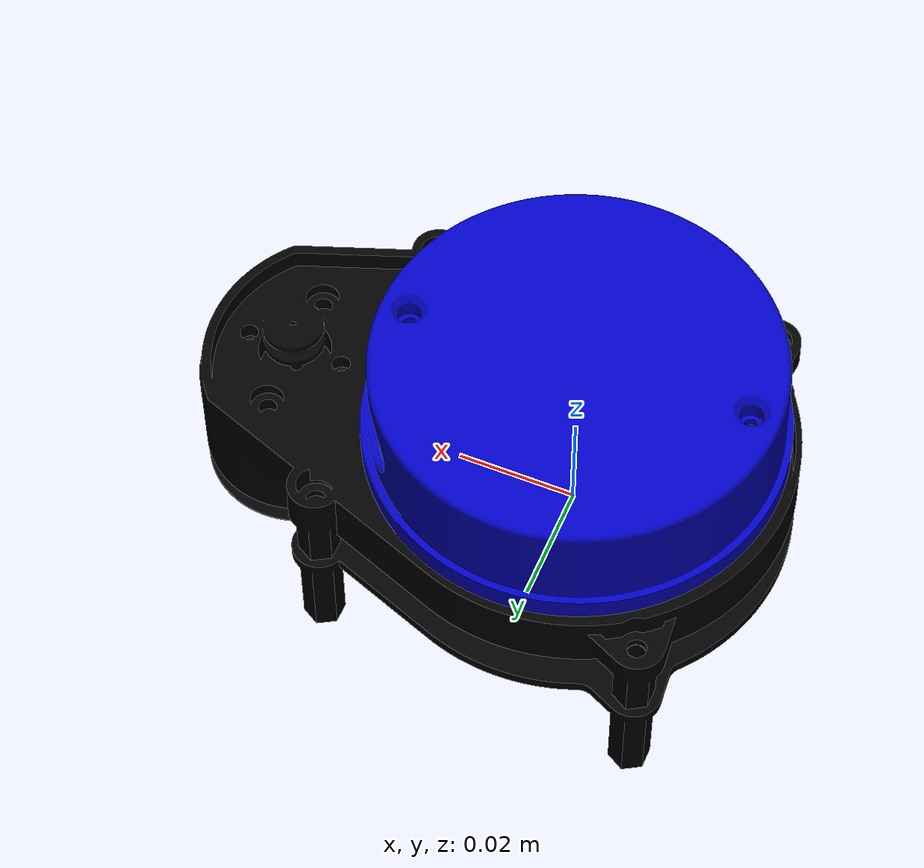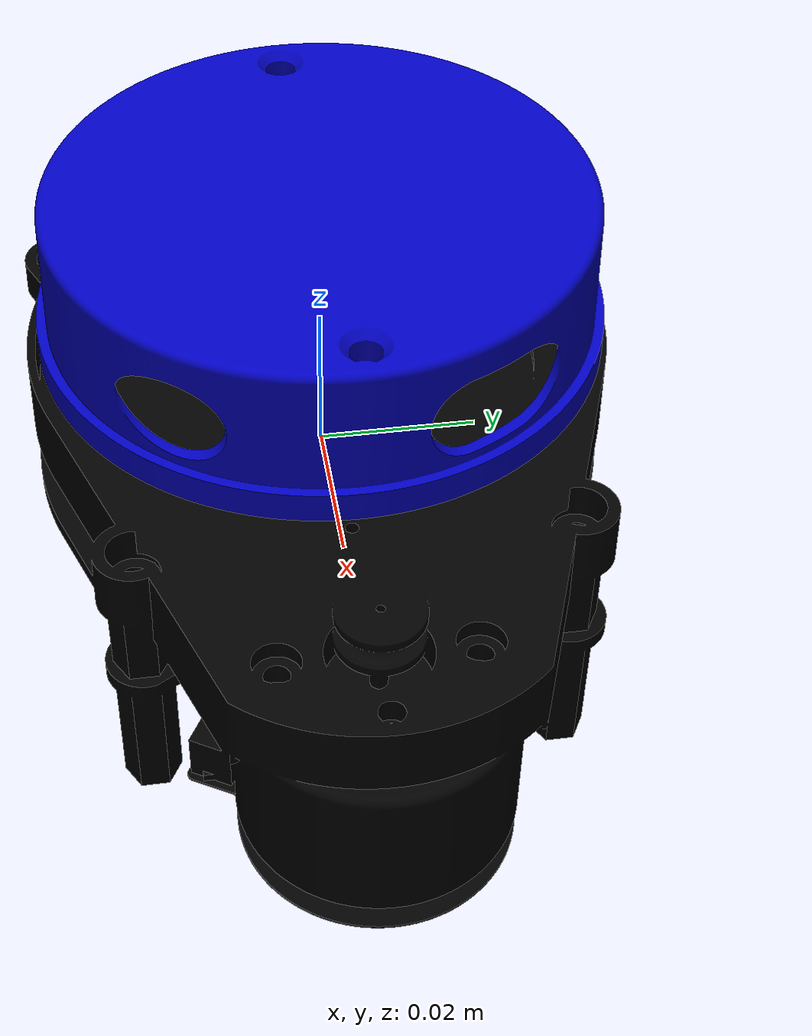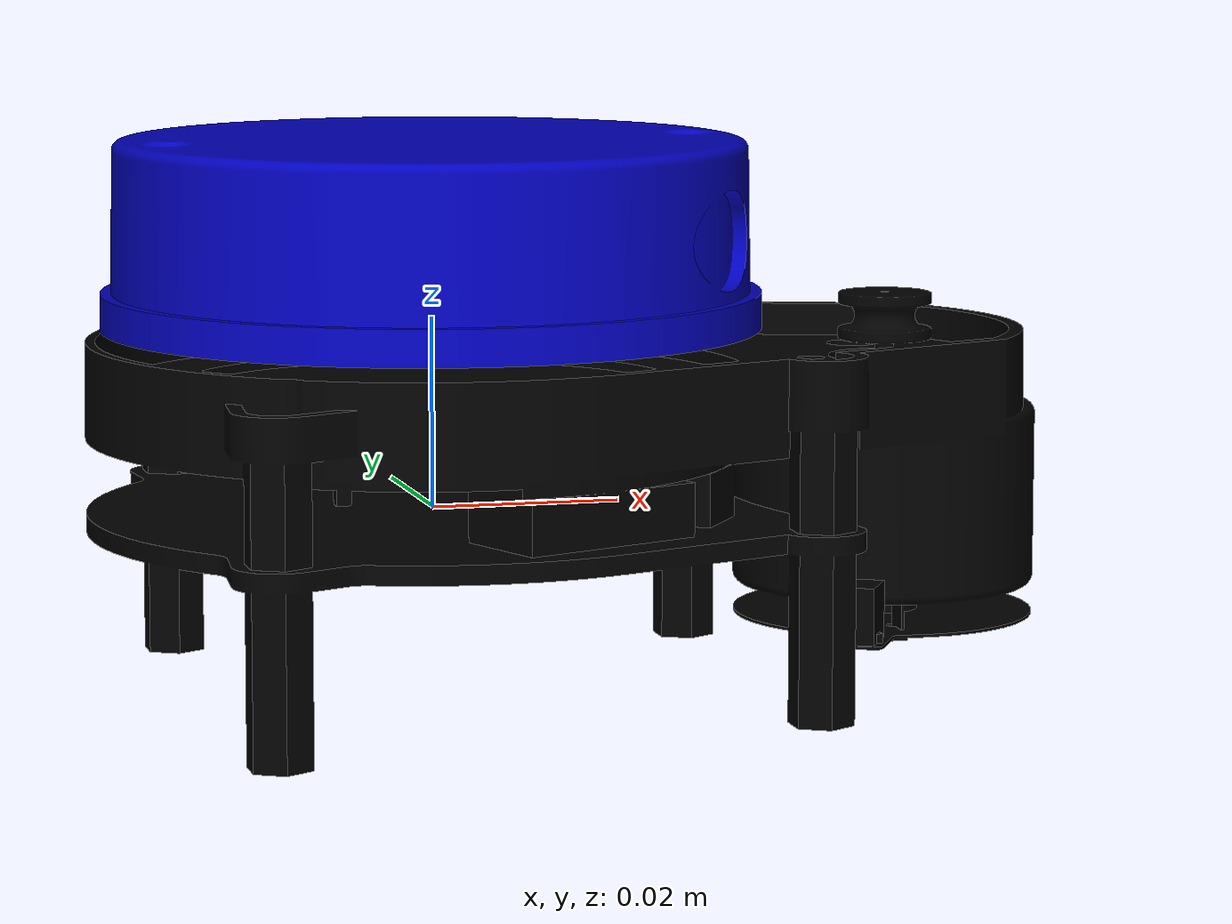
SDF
<?xml version='1.0' ?>
<sdf version='1.7'>
  <model name="ydlidar_x4">
    <static>false</static>
    <link name="ydlidar_x4_base">
      <pose>0 0 0 0 0 0</pose>
        <inertial>
          <mass>0.180</mass>
          <inertia>
            <ixx>0.000130494</ixx>
            <iyy>0.000130494</iyy>
            <izz>0.000038785</izz>
            <ixy>0</ixy>
            <ixz>0</ixz>
            <iyz>0</iyz>
          </inertia>
      </inertial>
      <visual name="ydlidar_x4_base_visual">
        <pose>0 0 .05 0 0 0</pose>
        <geometry>
          <mesh>
            <uri>model://ydlidar_x4/meshes/X4-BASE.stl</uri>
            <scale>.1 0.1 0.1</scale>
          </mesh>
        </geometry>
        <material>
          <ambient>0 0 0 1</ambient>
          <diffuse>0 0 0 1</diffuse>
          <specular>0.1 0.1 0.1 1</specular>
          <emissive>0 0 0 0</emissive>
        </material>
      </visual>
      <collision name="ydlidar_x4_base_collision">
        <pose>.015 0 0 0 0 0</pose>
        <geometry>
          <box>
            <size>.1 .07 .038</size>
          </box>
        </geometry>
      </collision>
    </link>
    <link name="ydlidar_x4_top">
      <pose>0 0 0 0 0 0</pose>
      <inertial>
        <mass>0.06</mass>
        <inertia>
          <ixx>0.000183636</ixx>
          <iyy>0.000183636</iyy>
          <izz>0.000053792</izz>
          <ixy>0</ixy>
          <ixz>0</ixz>
          <iyz>0</iyz>
        </inertia>
      </inertial>
      <visual name="ydlidar_x4_top_visual">
        <pose>-0.0005 0.0005 0.05 0 0 1.57</pose>
        <geometry>
          <mesh>
            <uri>model://ydlidar_x4/meshes/X4-TOP.stl</uri>
            <scale>0.1 0.1 0.1</scale>
          </mesh>
        </geometry>
        <material>
          <ambient>0 0 0.75 1</ambient>
          <diffuse>0 0 0.75 1</diffuse>
          <specular>0.1 0.1 0.1 1</specular>
          <emissive>0 0 0 0</emissive>
        </material>
      </visual>
      <collision name="ydlidar_x4_top_collision">
        <pose>0 0 .038 0 0 0</pose>
        <geometry>
          <cylinder>
            <radius>0.0328</radius>
            <length>0.0211</length>
          </cylinder>
        </geometry>
      </collision>
      <sensor type="ray" name="ydlidar_x4">
        <pose>0 0 .0276 1.5707 0 0</pose>
        <visualize>true</visualize>
        <update_rate>500</update_rate>
        <ray>
          <scan>
            <horizontal>
              <samples>2</samples>
              <resolution>1</resolution>
              <min_angle>-0.001</min_angle>
              <max_angle>0.2</max_angle>
            </horizontal>
          </scan>
          <range>
            <min>0.12</min>
            <max>10</max>
            <resolution>0.02</resolution>
          </range>
          <noise>
            <type>gaussian</type>
            <mean>0.0</mean>
            <stddev>0.02</stddev>
          </noise>
        </ray>
        <plugin name="scan" filename="libgazebo_ros_ray_sensor.so">
          <ros>
            <namespace>/x4</namespace>
          </ros>
          <output_type>sensor_msgs/LaserScan</output_type>
        </plugin>
      </sensor>
    </link>
    <joint type="revolute" name="joint">
      <pose>0 0 0 0 0 0</pose>
      <parent>ydlidar_x4_base</parent>
      <child>ydlidar_x4_top</child>
      <axis>
        <xyz>0 0 1</xyz>
        <limit>
          <lower>-10000000000000000</lower>
          <upper>10000000000000000</upper>
        </limit>
      </axis>
    </joint>
  </model>
</sdf>
